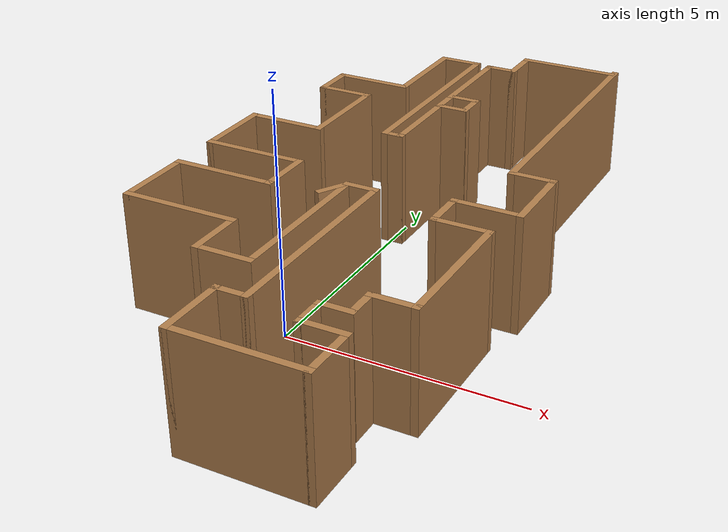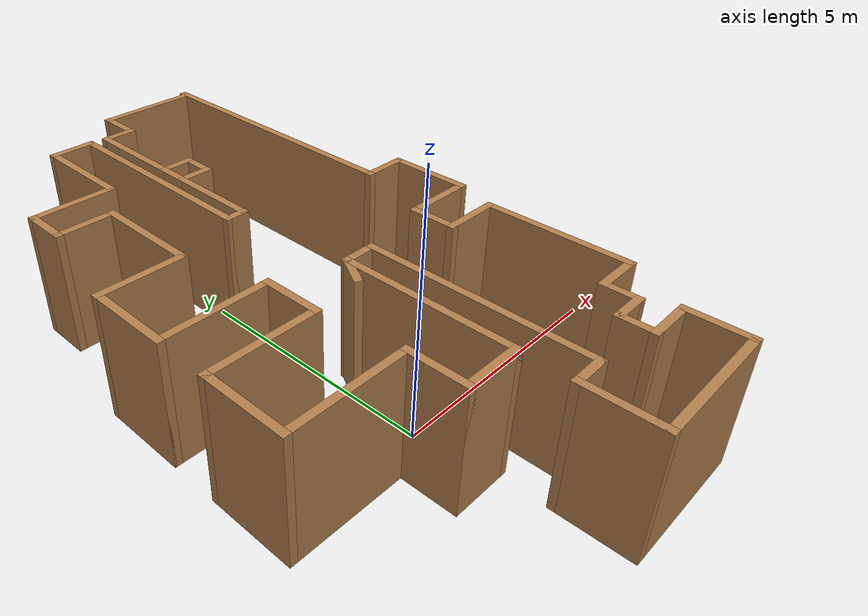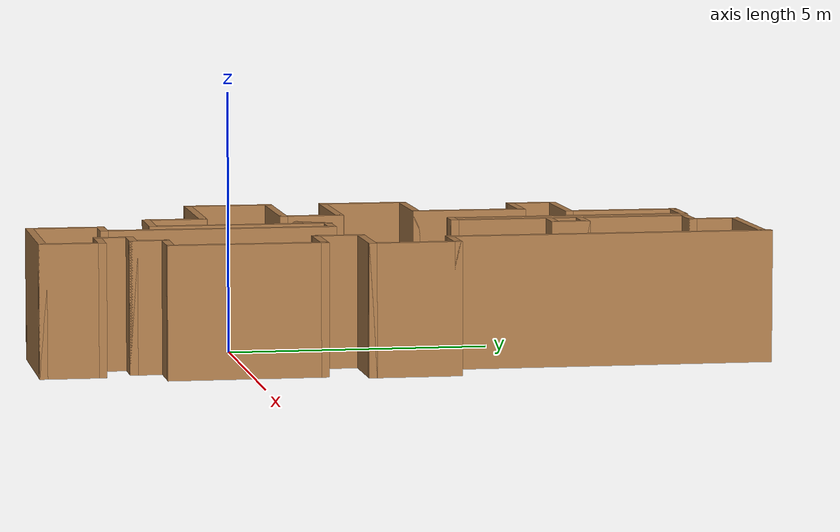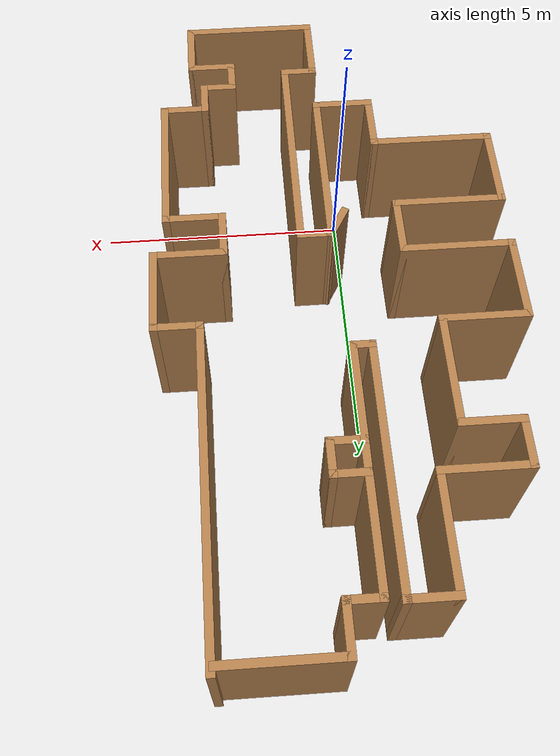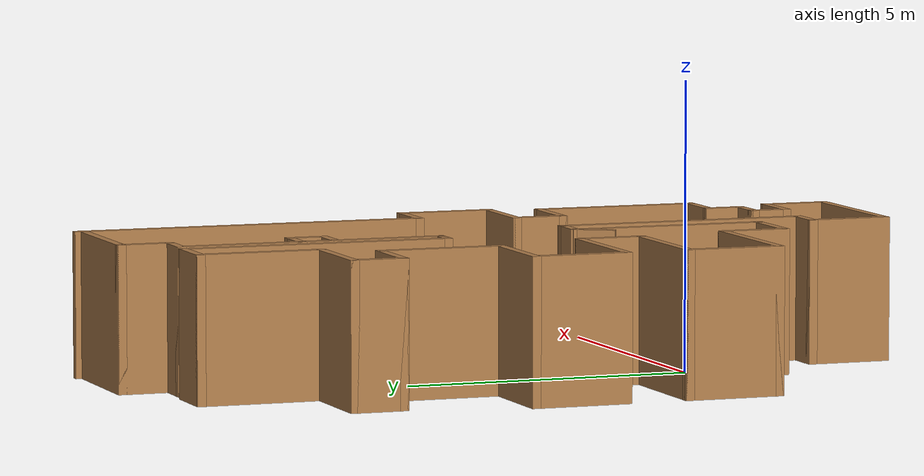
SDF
<?xml version='1.0'?>
<sdf version='1.6'>
  <model name='map_67'>
    <pose frame=''>0.347276 3.00658 0 0 -0 0</pose>
    <link name='Wall_10'>
      <collision name='Wall_10_Collision'>
        <geometry>
          <box>
            <size>2.25 0.15 2.5</size>
          </box>
        </geometry>
        <pose frame=''>0 0 1.25 0 -0 0</pose>
      </collision>
      <visual name='Wall_10_Visual'>
        <pose frame=''>0 0 1.25 0 -0 0</pose>
        <geometry>
          <box>
            <size>2.25 0.15 2.5</size>
          </box>
        </geometry>
        <material>
          <script>
            <uri>file://media/materials/scripts/gazebo.material</uri>
            <name>Gazebo/Wood</name>
          </script>
          <ambient>1 1 1 1</ambient>
        </material>
        <meta>
          <layer>0</layer>
        </meta>
      </visual>
      <pose frame=''>1.5 6.75 0 0 -0 3.14159</pose>
    </link>
    <link name='Wall_11'>
      <collision name='Wall_11_Collision'>
        <geometry>
          <box>
            <size>1 0.15 2.5</size>
          </box>
        </geometry>
        <pose frame=''>0 0 1.25 0 -0 0</pose>
      </collision>
      <visual name='Wall_11_Visual'>
        <pose frame=''>0 0 1.25 0 -0 0</pose>
        <geometry>
          <box>
            <size>1 0.15 2.5</size>
          </box>
        </geometry>
        <material>
          <script>
            <uri>file://media/materials/scripts/gazebo.material</uri>
            <name>Gazebo/Wood</name>
          </script>
          <ambient>1 1 1 1</ambient>
        </material>
        <meta>
          <layer>0</layer>
        </meta>
      </visual>
      <pose frame=''>0.45 6.325 0 0 -0 -1.5708</pose>
    </link>
    <link name='Wall_12'>
      <collision name='Wall_12_Collision'>
        <geometry>
          <box>
            <size>0.75 0.15 2.5</size>
          </box>
        </geometry>
        <pose frame=''>0 0 1.25 0 -0 0</pose>
      </collision>
      <visual name='Wall_12_Visual'>
        <pose frame=''>0 0 1.25 0 -0 0</pose>
        <geometry>
          <box>
            <size>0.75 0.15 2.5</size>
          </box>
        </geometry>
        <material>
          <script>
            <uri>file://media/materials/scripts/gazebo.material</uri>
            <name>Gazebo/Wood</name>
          </script>
          <ambient>1 1 1 1</ambient>
        </material>
        <meta>
          <layer>0</layer>
        </meta>
      </visual>
      <pose frame=''>0.15 5.9 0 0 -0 3.14159</pose>
    </link>
    <link name='Wall_13'>
      <collision name='Wall_13_Collision'>
        <geometry>
          <box>
            <size>2.25 0.15 2.5</size>
          </box>
        </geometry>
        <pose frame=''>0 0 1.25 0 -0 0</pose>
      </collision>
      <visual name='Wall_13_Visual'>
        <pose frame=''>0 0 1.25 0 -0 0</pose>
        <geometry>
          <box>
            <size>2.25 0.15 2.5</size>
          </box>
        </geometry>
        <material>
          <script>
            <uri>file://media/materials/scripts/gazebo.material</uri>
            <name>Gazebo/Wood</name>
          </script>
          <ambient>1 1 1 1</ambient>
        </material>
        <meta>
          <layer>0</layer>
        </meta>
      </visual>
      <pose frame=''>-0.15 4.85 0 0 -0 -1.5708</pose>
    </link>
    <link name='Wall_14'>
      <collision name='Wall_14_Collision'>
        <geometry>
          <box>
            <size>0.75 0.15 2.5</size>
          </box>
        </geometry>
        <pose frame=''>0 0 1.25 0 -0 0</pose>
      </collision>
      <visual name='Wall_14_Visual'>
        <pose frame=''>0 0 1.25 0 -0 0</pose>
        <geometry>
          <box>
            <size>0.75 0.15 2.5</size>
          </box>
        </geometry>
        <material>
          <script>
            <uri>file://media/materials/scripts/gazebo.material</uri>
            <name>Gazebo/Wood</name>
          </script>
          <ambient>1 1 1 1</ambient>
        </material>
        <meta>
          <layer>0</layer>
        </meta>
      </visual>
      <pose frame=''>0.15 3.8 0 0 -0 0</pose>
    </link>
    <link name='Wall_15'>
      <collision name='Wall_15_Collision'>
        <geometry>
          <box>
            <size>0.75 0.15 2.5</size>
          </box>
        </geometry>
        <pose frame=''>0 0 1.25 0 -0 0</pose>
      </collision>
      <visual name='Wall_15_Visual'>
        <pose frame=''>0 0 1.25 0 -0 0</pose>
        <geometry>
          <box>
            <size>0.75 0.15 2.5</size>
          </box>
        </geometry>
        <material>
          <script>
            <uri>file://media/materials/scripts/gazebo.material</uri>
            <name>Gazebo/Wood</name>
          </script>
          <ambient>1 1 1 1</ambient>
        </material>
        <meta>
          <layer>0</layer>
        </meta>
      </visual>
      <pose frame=''>0.45 3.5 0 0 -0 -1.5708</pose>
    </link>
    <link name='Wall_16'>
      <collision name='Wall_16_Collision'>
        <geometry>
          <box>
            <size>0.75 0.15 2.5</size>
          </box>
        </geometry>
        <pose frame=''>0 0 1.25 0 -0 0</pose>
      </collision>
      <visual name='Wall_16_Visual'>
        <pose frame=''>0 0 1.25 0 -0 0</pose>
        <geometry>
          <box>
            <size>0.75 0.15 2.5</size>
          </box>
        </geometry>
        <material>
          <script>
            <uri>file://media/materials/scripts/gazebo.material</uri>
            <name>Gazebo/Wood</name>
          </script>
          <ambient>1 1 1 1</ambient>
        </material>
        <meta>
          <layer>0</layer>
        </meta>
      </visual>
      <pose frame=''>0.15 3.2 0 0 -0 3.14159</pose>
    </link>
    <link name='Wall_17'>
      <collision name='Wall_17_Collision'>
        <geometry>
          <box>
            <size>2 0.15 2.5</size>
          </box>
        </geometry>
        <pose frame=''>0 0 1.25 0 -0 0</pose>
      </collision>
      <visual name='Wall_17_Visual'>
        <pose frame=''>0 0 1.25 0 -0 0</pose>
        <geometry>
          <box>
            <size>2 0.15 2.5</size>
          </box>
        </geometry>
        <material>
          <script>
            <uri>file://media/materials/scripts/gazebo.material</uri>
            <name>Gazebo/Wood</name>
          </script>
          <ambient>1 1 1 1</ambient>
        </material>
        <meta>
          <layer>0</layer>
        </meta>
      </visual>
      <pose frame=''>-0.15 2.275 0 0 -0 -1.5708</pose>
    </link>
    <link name='Wall_19'>
      <collision name='Wall_19_Collision'>
        <geometry>
          <box>
            <size>0.75 0.15 2.5</size>
          </box>
        </geometry>
        <pose frame=''>0 0 1.25 0 -0 0</pose>
      </collision>
      <visual name='Wall_19_Visual'>
        <pose frame=''>0 0 1.25 0 -0 0</pose>
        <geometry>
          <box>
            <size>0.75 0.15 2.5</size>
          </box>
        </geometry>
        <material>
          <script>
            <uri>file://media/materials/scripts/gazebo.material</uri>
            <name>Gazebo/Wood</name>
          </script>
          <ambient>1 1 1 1</ambient>
        </material>
        <meta>
          <layer>0</layer>
        </meta>
      </visual>
      <pose frame=''>-0.15 3.5 0 0 -0 -1.5708</pose>
    </link>
    <link name='Wall_21'>
      <collision name='Wall_21_Collision'>
        <geometry>
          <box>
            <size>0.5 0.15 2.5</size>
          </box>
        </geometry>
        <pose frame=''>0 0 1.25 0 -0 0</pose>
      </collision>
      <visual name='Wall_21_Visual'>
        <pose frame=''>0 0 1.25 0 -0 0</pose>
        <geometry>
          <box>
            <size>0.5 0.15 2.5</size>
          </box>
        </geometry>
        <material>
          <script>
            <uri>file://media/materials/scripts/gazebo.material</uri>
            <name>Gazebo/Wood</name>
          </script>
          <ambient>1 1 1 1</ambient>
        </material>
        <meta>
          <layer>0</layer>
        </meta>
      </visual>
      <pose frame=''>-0.325 1.35 0 0 -0 3.14159</pose>
    </link>
    <link name='Wall_22'>
      <collision name='Wall_22_Collision'>
        <geometry>
          <box>
            <size>4.75 0.15 2.5</size>
          </box>
        </geometry>
        <pose frame=''>0 0 1.25 0 -0 0</pose>
      </collision>
      <visual name='Wall_22_Visual'>
        <pose frame=''>0 0 1.25 0 -0 0</pose>
        <geometry>
          <box>
            <size>4.75 0.15 2.5</size>
          </box>
        </geometry>
        <material>
          <script>
            <uri>file://media/materials/scripts/gazebo.material</uri>
            <name>Gazebo/Wood</name>
          </script>
          <ambient>1 1 1 1</ambient>
        </material>
        <meta>
          <layer>0</layer>
        </meta>
      </visual>
      <pose frame=''>-0.5 3.65 0 0 -0 1.5708</pose>
    </link>
    <link name='Wall_23'>
      <collision name='Wall_23_Collision'>
        <geometry>
          <box>
            <size>1 0.15 2.5</size>
          </box>
        </geometry>
        <pose frame=''>0 0 1.25 0 -0 0</pose>
      </collision>
      <visual name='Wall_23_Visual'>
        <pose frame=''>0 0 1.25 0 -0 0</pose>
        <geometry>
          <box>
            <size>1 0.15 2.5</size>
          </box>
        </geometry>
        <material>
          <script>
            <uri>file://media/materials/scripts/gazebo.material</uri>
            <name>Gazebo/Wood</name>
          </script>
          <ambient>1 1 1 1</ambient>
        </material>
        <meta>
          <layer>0</layer>
        </meta>
      </visual>
      <pose frame=''>-0.925 5.95 0 0 -0 3.14159</pose>
    </link>
    <link name='Wall_24'>
      <collision name='Wall_24_Collision'>
        <geometry>
          <box>
            <size>2.25 0.15 2.5</size>
          </box>
        </geometry>
        <pose frame=''>0 0 1.25 0 -0 0</pose>
      </collision>
      <visual name='Wall_24_Visual'>
        <pose frame=''>0 0 1.25 0 -0 0</pose>
        <geometry>
          <box>
            <size>2.25 0.15 2.5</size>
          </box>
        </geometry>
        <material>
          <script>
            <uri>file://media/materials/scripts/gazebo.material</uri>
            <name>Gazebo/Wood</name>
          </script>
          <ambient>1 1 1 1</ambient>
        </material>
        <meta>
          <layer>0</layer>
        </meta>
      </visual>
      <pose frame=''>-1.35 4.9 0 0 -0 -1.5708</pose>
    </link>
    <link name='Wall_25'>
      <collision name='Wall_25_Collision'>
        <geometry>
          <box>
            <size>1.75 0.15 2.5</size>
          </box>
        </geometry>
        <pose frame=''>0 0 1.25 0 -0 0</pose>
      </collision>
      <visual name='Wall_25_Visual'>
        <pose frame=''>0 0 1.25 0 -0 0</pose>
        <geometry>
          <box>
            <size>1.75 0.15 2.5</size>
          </box>
        </geometry>
        <material>
          <script>
            <uri>file://media/materials/scripts/gazebo.material</uri>
            <name>Gazebo/Wood</name>
          </script>
          <ambient>1 1 1 1</ambient>
        </material>
        <meta>
          <layer>0</layer>
        </meta>
      </visual>
      <pose frame=''>-2.15 3.85 0 0 -0 3.14159</pose>
    </link>
    <link name='Wall_26'>
      <collision name='Wall_26_Collision'>
        <geometry>
          <box>
            <size>1 0.15 2.5</size>
          </box>
        </geometry>
        <pose frame=''>0 0 1.25 0 -0 0</pose>
      </collision>
      <visual name='Wall_26_Visual'>
        <pose frame=''>0 0 1.25 0 -0 0</pose>
        <geometry>
          <box>
            <size>1 0.15 2.5</size>
          </box>
        </geometry>
        <material>
          <script>
            <uri>file://media/materials/scripts/gazebo.material</uri>
            <name>Gazebo/Wood</name>
          </script>
          <ambient>1 1 1 1</ambient>
        </material>
        <meta>
          <layer>0</layer>
        </meta>
      </visual>
      <pose frame=''>-2.95 3.425 0 0 -0 -1.5708</pose>
    </link>
    <link name='Wall_27'>
      <collision name='Wall_27_Collision'>
        <geometry>
          <box>
            <size>1.25 0.15 2.5</size>
          </box>
        </geometry>
        <pose frame=''>0 0 1.25 0 -0 0</pose>
      </collision>
      <visual name='Wall_27_Visual'>
        <pose frame=''>0 0 1.25 0 -0 0</pose>
        <geometry>
          <box>
            <size>1.25 0.15 2.5</size>
          </box>
        </geometry>
        <material>
          <script>
            <uri>file://media/materials/scripts/gazebo.material</uri>
            <name>Gazebo/Wood</name>
          </script>
          <ambient>1 1 1 1</ambient>
        </material>
        <meta>
          <layer>0</layer>
        </meta>
      </visual>
      <pose frame=''>-2.4 3 0 0 -0 0</pose>
    </link>
    <link name='Wall_28'>
      <collision name='Wall_28_Collision'>
        <geometry>
          <box>
            <size>2.25 0.15 2.5</size>
          </box>
        </geometry>
        <pose frame=''>0 0 1.25 0 -0 0</pose>
      </collision>
      <visual name='Wall_28_Visual'>
        <pose frame=''>0 0 1.25 0 -0 0</pose>
        <geometry>
          <box>
            <size>2.25 0.15 2.5</size>
          </box>
        </geometry>
        <material>
          <script>
            <uri>file://media/materials/scripts/gazebo.material</uri>
            <name>Gazebo/Wood</name>
          </script>
          <ambient>1 1 1 1</ambient>
        </material>
        <meta>
          <layer>0</layer>
        </meta>
      </visual>
      <pose frame=''>-1.85 1.95 0 0 -0 -1.5708</pose>
    </link>
    <link name='Wall_29'>
      <collision name='Wall_29_Collision'>
        <geometry>
          <box>
            <size>1.75 0.15 2.5</size>
          </box>
        </geometry>
        <pose frame=''>0 0 1.25 0 -0 0</pose>
      </collision>
      <visual name='Wall_29_Visual'>
        <pose frame=''>0 0 1.25 0 -0 0</pose>
        <geometry>
          <box>
            <size>1.75 0.15 2.5</size>
          </box>
        </geometry>
        <material>
          <script>
            <uri>file://media/materials/scripts/gazebo.material</uri>
            <name>Gazebo/Wood</name>
          </script>
          <ambient>1 1 1 1</ambient>
        </material>
        <meta>
          <layer>0</layer>
        </meta>
      </visual>
      <pose frame=''>-2.65 0.9 0 0 -0 3.14159</pose>
    </link>
    <link name='Wall_30'>
      <collision name='Wall_30_Collision'>
        <geometry>
          <box>
            <size>1.75 0.15 2.5</size>
          </box>
        </geometry>
        <pose frame=''>0 0 1.25 0 -0 0</pose>
      </collision>
      <visual name='Wall_30_Visual'>
        <pose frame=''>0 0 1.25 0 -0 0</pose>
        <geometry>
          <box>
            <size>1.75 0.15 2.5</size>
          </box>
        </geometry>
        <material>
          <script>
            <uri>file://media/materials/scripts/gazebo.material</uri>
            <name>Gazebo/Wood</name>
          </script>
          <ambient>1 1 1 1</ambient>
        </material>
        <meta>
          <layer>0</layer>
        </meta>
      </visual>
      <pose frame=''>-3.45 0.1 0 0 -0 -1.5708</pose>
    </link>
    <link name='Wall_31'>
      <collision name='Wall_31_Collision'>
        <geometry>
          <box>
            <size>2.25 0.15 2.5</size>
          </box>
        </geometry>
        <pose frame=''>0 0 1.25 0 -0 0</pose>
      </collision>
      <visual name='Wall_31_Visual'>
        <pose frame=''>0 0 1.25 0 -0 0</pose>
        <geometry>
          <box>
            <size>2.25 0.15 2.5</size>
          </box>
        </geometry>
        <material>
          <script>
            <uri>file://media/materials/scripts/gazebo.material</uri>
            <name>Gazebo/Wood</name>
          </script>
          <ambient>1 1 1 1</ambient>
        </material>
        <meta>
          <layer>0</layer>
        </meta>
      </visual>
      <pose frame=''>-2.4 -0.7 0 0 -0 0</pose>
    </link>
    <link name='Wall_32'>
      <collision name='Wall_32_Collision'>
        <geometry>
          <box>
            <size>1.25 0.15 2.5</size>
          </box>
        </geometry>
        <pose frame=''>0 0 1.25 0 -0 0</pose>
      </collision>
      <visual name='Wall_32_Visual'>
        <pose frame=''>0 0 1.25 0 -0 0</pose>
        <geometry>
          <box>
            <size>1.25 0.15 2.5</size>
          </box>
        </geometry>
        <material>
          <script>
            <uri>file://media/materials/scripts/gazebo.material</uri>
            <name>Gazebo/Wood</name>
          </script>
          <ambient>1 1 1 1</ambient>
        </material>
        <meta>
          <layer>0</layer>
        </meta>
      </visual>
      <pose frame=''>-1.35 -1.25 0 0 -0 -1.5708</pose>
    </link>
    <link name='Wall_34'>
      <collision name='Wall_34_Collision'>
        <geometry>
          <box>
            <size>2.25 0.15 2.5</size>
          </box>
        </geometry>
        <pose frame=''>0 0 1.25 0 -0 0</pose>
      </collision>
      <visual name='Wall_34_Visual'>
        <pose frame=''>0 0 1.25 0 -0 0</pose>
        <geometry>
          <box>
            <size>2.25 0.15 2.5</size>
          </box>
        </geometry>
        <material>
          <script>
            <uri>file://media/materials/scripts/gazebo.material</uri>
            <name>Gazebo/Wood</name>
          </script>
          <ambient>1 1 1 1</ambient>
        </material>
        <meta>
          <layer>0</layer>
        </meta>
      </visual>
      <pose frame=''>-2.4 -1.8 0 0 -0 3.14159</pose>
    </link>
    <link name='Wall_35'>
      <collision name='Wall_35_Collision'>
        <geometry>
          <box>
            <size>1.75 0.15 2.5</size>
          </box>
        </geometry>
        <pose frame=''>0 0 1.25 0 -0 0</pose>
      </collision>
      <visual name='Wall_35_Visual'>
        <pose frame=''>0 0 1.25 0 -0 0</pose>
        <geometry>
          <box>
            <size>1.75 0.15 2.5</size>
          </box>
        </geometry>
        <material>
          <script>
            <uri>file://media/materials/scripts/gazebo.material</uri>
            <name>Gazebo/Wood</name>
          </script>
          <ambient>1 1 1 1</ambient>
        </material>
        <meta>
          <layer>0</layer>
        </meta>
      </visual>
      <pose frame=''>-3.45 -2.6 0 0 -0 -1.5708</pose>
    </link>
    <link name='Wall_36'>
      <collision name='Wall_36_Collision'>
        <geometry>
          <box>
            <size>2.5 0.15 2.5</size>
          </box>
        </geometry>
        <pose frame=''>0 0 1.25 0 -0 0</pose>
      </collision>
      <visual name='Wall_36_Visual'>
        <pose frame=''>0 0 1.25 0 -0 0</pose>
        <geometry>
          <box>
            <size>2.5 0.15 2.5</size>
          </box>
        </geometry>
        <material>
          <script>
            <uri>file://media/materials/scripts/gazebo.material</uri>
            <name>Gazebo/Wood</name>
          </script>
          <ambient>1 1 1 1</ambient>
        </material>
        <meta>
          <layer>0</layer>
        </meta>
      </visual>
      <pose frame=''>-2.275 -3.4 0 0 -0 0</pose>
    </link>
    <link name='Wall_37'>
      <collision name='Wall_37_Collision'>
        <geometry>
          <box>
            <size>1.25 0.15 2.5</size>
          </box>
        </geometry>
        <pose frame=''>0 0 1.25 0 -0 0</pose>
      </collision>
      <visual name='Wall_37_Visual'>
        <pose frame=''>0 0 1.25 0 -0 0</pose>
        <geometry>
          <box>
            <size>1.25 0.15 2.5</size>
          </box>
        </geometry>
        <material>
          <script>
            <uri>file://media/materials/scripts/gazebo.material</uri>
            <name>Gazebo/Wood</name>
          </script>
          <ambient>1 1 1 1</ambient>
        </material>
        <meta>
          <layer>0</layer>
        </meta>
      </visual>
      <pose frame=''>-1.1 -3.95 0 0 -0 -1.5708</pose>
    </link>
    <link name='Wall_38'>
      <collision name='Wall_38_Collision'>
        <geometry>
          <box>
            <size>1.25 0.15 2.5</size>
          </box>
        </geometry>
        <pose frame=''>0 0 1.25 0 -0 0</pose>
      </collision>
      <visual name='Wall_38_Visual'>
        <pose frame=''>0 0 1.25 0 -0 0</pose>
        <geometry>
          <box>
            <size>1.25 0.15 2.5</size>
          </box>
        </geometry>
        <material>
          <script>
            <uri>file://media/materials/scripts/gazebo.material</uri>
            <name>Gazebo/Wood</name>
          </script>
          <ambient>1 1 1 1</ambient>
        </material>
        <meta>
          <layer>0</layer>
        </meta>
      </visual>
      <pose frame=''>-0.55 -4.5 0 0 -0 0</pose>
    </link>
    <link name='Wall_39'>
      <collision name='Wall_39_Collision'>
        <geometry>
          <box>
            <size>3.5 0.15 2.5</size>
          </box>
        </geometry>
        <pose frame=''>0 0 1.25 0 -0 0</pose>
      </collision>
      <visual name='Wall_39_Visual'>
        <pose frame=''>0 0 1.25 0 -0 0</pose>
        <geometry>
          <box>
            <size>3.5 0.15 2.5</size>
          </box>
        </geometry>
        <material>
          <script>
            <uri>file://media/materials/scripts/gazebo.material</uri>
            <name>Gazebo/Wood</name>
          </script>
          <ambient>1 1 1 1</ambient>
        </material>
        <meta>
          <layer>0</layer>
        </meta>
      </visual>
      <pose frame=''>0 -2.825 0 0 -0 1.5708</pose>
    </link>
    <link name='Wall_40'>
      <collision name='Wall_40_Collision'>
        <geometry>
          <box>
            <size>0.75 0.15 2.5</size>
          </box>
        </geometry>
        <pose frame=''>0 0 1.25 0 -0 0</pose>
      </collision>
      <visual name='Wall_40_Visual'>
        <pose frame=''>0 0 1.25 0 -0 0</pose>
        <geometry>
          <box>
            <size>0.75 0.15 2.5</size>
          </box>
        </geometry>
        <material>
          <script>
            <uri>file://media/materials/scripts/gazebo.material</uri>
            <name>Gazebo/Wood</name>
          </script>
          <ambient>1 1 1 1</ambient>
        </material>
        <meta>
          <layer>0</layer>
        </meta>
      </visual>
      <pose frame=''>0.3 -1.15 0 0 -0 0</pose>
    </link>
    <link name='Wall_41'>
      <collision name='Wall_41_Collision'>
        <geometry>
          <box>
            <size>4.5 0.15 2.5</size>
          </box>
        </geometry>
        <pose frame=''>0 0 1.25 0 -0 0</pose>
      </collision>
      <visual name='Wall_41_Visual'>
        <pose frame=''>0 0 1.25 0 -0 0</pose>
        <geometry>
          <box>
            <size>4.5 0.15 2.5</size>
          </box>
        </geometry>
        <material>
          <script>
            <uri>file://media/materials/scripts/gazebo.material</uri>
            <name>Gazebo/Wood</name>
          </script>
          <ambient>1 1 1 1</ambient>
        </material>
        <meta>
          <layer>0</layer>
        </meta>
      </visual>
      <pose frame=''>0.6 -3.325 0 0 -0 -1.5708</pose>
    </link>
    <link name='Wall_42'>
      <collision name='Wall_42_Collision'>
        <geometry>
          <box>
            <size>0.75 0.15 2.5</size>
          </box>
        </geometry>
        <pose frame=''>0 0 1.25 0 -0 0</pose>
      </collision>
      <visual name='Wall_42_Visual'>
        <pose frame=''>0 0 1.25 0 -0 0</pose>
        <geometry>
          <box>
            <size>0.75 0.15 2.5</size>
          </box>
        </geometry>
        <material>
          <script>
            <uri>file://media/materials/scripts/gazebo.material</uri>
            <name>Gazebo/Wood</name>
          </script>
          <ambient>1 1 1 1</ambient>
        </material>
        <meta>
          <layer>0</layer>
        </meta>
      </visual>
      <pose frame=''>0.3 -5.5 0 0 -0 3.14159</pose>
    </link>
    <link name='Wall_43'>
      <collision name='Wall_43_Collision'>
        <geometry>
          <box>
            <size>1.5 0.15 2.5</size>
          </box>
        </geometry>
        <pose frame=''>0 0 1.25 0 -0 0</pose>
      </collision>
      <visual name='Wall_43_Visual'>
        <pose frame=''>0 0 1.25 0 -0 0</pose>
        <geometry>
          <box>
            <size>1.5 0.15 2.5</size>
          </box>
        </geometry>
        <material>
          <script>
            <uri>file://media/materials/scripts/gazebo.material</uri>
            <name>Gazebo/Wood</name>
          </script>
          <ambient>1 1 1 1</ambient>
        </material>
        <meta>
          <layer>0</layer>
        </meta>
      </visual>
      <pose frame=''>0 -6.175 0 0 -0 -1.5708</pose>
    </link>
    <link name='Wall_44'>
      <collision name='Wall_44_Collision'>
        <geometry>
          <box>
            <size>2.75 0.15 2.5</size>
          </box>
        </geometry>
        <pose frame=''>0 0 1.25 0 -0 0</pose>
      </collision>
      <visual name='Wall_44_Visual'>
        <pose frame=''>0 0 1.25 0 -0 0</pose>
        <geometry>
          <box>
            <size>2.75 0.15 2.5</size>
          </box>
        </geometry>
        <material>
          <script>
            <uri>file://media/materials/scripts/gazebo.material</uri>
            <name>Gazebo/Wood</name>
          </script>
          <ambient>1 1 1 1</ambient>
        </material>
        <meta>
          <layer>0</layer>
        </meta>
      </visual>
      <pose frame=''>1.3 -6.85 0 0 -0 0</pose>
    </link>
    <link name='Wall_45'>
      <collision name='Wall_45_Collision'>
        <geometry>
          <box>
            <size>1.25 0.15 2.5</size>
          </box>
        </geometry>
        <pose frame=''>0 0 1.25 0 -0 0</pose>
      </collision>
      <visual name='Wall_45_Visual'>
        <pose frame=''>0 0 1.25 0 -0 0</pose>
        <geometry>
          <box>
            <size>1.25 0.15 2.5</size>
          </box>
        </geometry>
        <material>
          <script>
            <uri>file://media/materials/scripts/gazebo.material</uri>
            <name>Gazebo/Wood</name>
          </script>
          <ambient>1 1 1 1</ambient>
        </material>
        <meta>
          <layer>0</layer>
        </meta>
      </visual>
      <pose frame=''>2.6 -6.3 0 0 -0 1.5708</pose>
    </link>
    <link name='Wall_46'>
      <collision name='Wall_46_Collision'>
        <geometry>
          <box>
            <size>1 0.15 2.5</size>
          </box>
        </geometry>
        <pose frame=''>0 0 1.25 0 -0 0</pose>
      </collision>
      <visual name='Wall_46_Visual'>
        <pose frame=''>0 0 1.25 0 -0 0</pose>
        <geometry>
          <box>
            <size>1 0.15 2.5</size>
          </box>
        </geometry>
        <material>
          <script>
            <uri>file://media/materials/scripts/gazebo.material</uri>
            <name>Gazebo/Wood</name>
          </script>
          <ambient>1 1 1 1</ambient>
        </material>
        <meta>
          <layer>0</layer>
        </meta>
      </visual>
      <pose frame=''>2.175 -5.75 0 0 -0 3.14159</pose>
    </link>
    <link name='Wall_47'>
      <collision name='Wall_47_Collision'>
        <geometry>
          <box>
            <size>0.75 0.15 2.5</size>
          </box>
        </geometry>
        <pose frame=''>0 0 1.25 0 -0 0</pose>
      </collision>
      <visual name='Wall_47_Visual'>
        <pose frame=''>0 0 1.25 0 -0 0</pose>
        <geometry>
          <box>
            <size>0.75 0.15 2.5</size>
          </box>
        </geometry>
        <material>
          <script>
            <uri>file://media/materials/scripts/gazebo.material</uri>
            <name>Gazebo/Wood</name>
          </script>
          <ambient>1 1 1 1</ambient>
        </material>
        <meta>
          <layer>0</layer>
        </meta>
      </visual>
      <pose frame=''>1.75 -5.45 0 0 -0 1.5708</pose>
    </link>
    <link name='Wall_48'>
      <collision name='Wall_48_Collision'>
        <geometry>
          <box>
            <size>0.75 0.15 2.5</size>
          </box>
        </geometry>
        <pose frame=''>0 0 1.25 0 -0 0</pose>
      </collision>
      <visual name='Wall_48_Visual'>
        <pose frame=''>0 0 1.25 0 -0 0</pose>
        <geometry>
          <box>
            <size>0.75 0.15 2.5</size>
          </box>
        </geometry>
        <material>
          <script>
            <uri>file://media/materials/scripts/gazebo.material</uri>
            <name>Gazebo/Wood</name>
          </script>
          <ambient>1 1 1 1</ambient>
        </material>
        <meta>
          <layer>0</layer>
        </meta>
      </visual>
      <pose frame=''>2.05 -5.15 0 0 -0 0</pose>
    </link>
    <link name='Wall_49'>
      <collision name='Wall_49_Collision'>
        <geometry>
          <box>
            <size>0.75 0.15 2.5</size>
          </box>
        </geometry>
        <pose frame=''>0 0 1.25 0 -0 0</pose>
      </collision>
      <visual name='Wall_49_Visual'>
        <pose frame=''>0 0 1.25 0 -0 0</pose>
        <geometry>
          <box>
            <size>0.75 0.15 2.5</size>
          </box>
        </geometry>
        <material>
          <script>
            <uri>file://media/materials/scripts/gazebo.material</uri>
            <name>Gazebo/Wood</name>
          </script>
          <ambient>1 1 1 1</ambient>
        </material>
        <meta>
          <layer>0</layer>
        </meta>
      </visual>
      <pose frame=''>2.35 -4.85 0 0 -0 1.5708</pose>
    </link>
    <link name='Wall_52'>
      <collision name='Wall_52_Collision'>
        <geometry>
          <box>
            <size>1 0.15 2.5</size>
          </box>
        </geometry>
        <pose frame=''>0 0 1.25 0 -0 0</pose>
      </collision>
      <visual name='Wall_52_Visual'>
        <pose frame=''>0 0 1.25 0 -0 0</pose>
        <geometry>
          <box>
            <size>1 0.15 2.5</size>
          </box>
        </geometry>
        <material>
          <script>
            <uri>file://media/materials/scripts/gazebo.material</uri>
            <name>Gazebo/Wood</name>
          </script>
          <ambient>1 1 1 1</ambient>
        </material>
        <meta>
          <layer>0</layer>
        </meta>
      </visual>
      <pose frame=''>2.775 -4.55 0 0 -0 0</pose>
    </link>
    <link name='Wall_53'>
      <collision name='Wall_53_Collision'>
        <geometry>
          <box>
            <size>3 0.15 2.5</size>
          </box>
        </geometry>
        <pose frame=''>0 0 1.25 0 -0 0</pose>
      </collision>
      <visual name='Wall_53_Visual'>
        <pose frame=''>0 0 1.25 0 -0 0</pose>
        <geometry>
          <box>
            <size>3 0.15 2.5</size>
          </box>
        </geometry>
        <material>
          <script>
            <uri>file://media/materials/scripts/gazebo.material</uri>
            <name>Gazebo/Wood</name>
          </script>
          <ambient>1 1 1 1</ambient>
        </material>
        <meta>
          <layer>0</layer>
        </meta>
      </visual>
      <pose frame=''>3.2 -3.125 0 0 -0 1.5708</pose>
    </link>
    <link name='Wall_54'>
      <collision name='Wall_54_Collision'>
        <geometry>
          <box>
            <size>1.25 0.15 2.5</size>
          </box>
        </geometry>
        <pose frame=''>0 0 1.25 0 -0 0</pose>
      </collision>
      <visual name='Wall_54_Visual'>
        <pose frame=''>0 0 1.25 0 -0 0</pose>
        <geometry>
          <box>
            <size>1.25 0.15 2.5</size>
          </box>
        </geometry>
        <material>
          <script>
            <uri>file://media/materials/scripts/gazebo.material</uri>
            <name>Gazebo/Wood</name>
          </script>
          <ambient>1 1 1 1</ambient>
        </material>
        <meta>
          <layer>0</layer>
        </meta>
      </visual>
      <pose frame=''>2.65 -1.7 0 0 -0 3.14159</pose>
    </link>
    <link name='Wall_55'>
      <collision name='Wall_55_Collision'>
        <geometry>
          <box>
            <size>1 0.15 2.5</size>
          </box>
        </geometry>
        <pose frame=''>0 0 1.25 0 -0 0</pose>
      </collision>
      <visual name='Wall_55_Visual'>
        <pose frame=''>0 0 1.25 0 -0 0</pose>
        <geometry>
          <box>
            <size>1 0.15 2.5</size>
          </box>
        </geometry>
        <material>
          <script>
            <uri>file://media/materials/scripts/gazebo.material</uri>
            <name>Gazebo/Wood</name>
          </script>
          <ambient>1 1 1 1</ambient>
        </material>
        <meta>
          <layer>0</layer>
        </meta>
      </visual>
      <pose frame=''>2.1 -1.275 0 0 -0 1.5708</pose>
    </link>
    <link name='Wall_56'>
      <collision name='Wall_56_Collision'>
        <geometry>
          <box>
            <size>1.5 0.15 2.5</size>
          </box>
        </geometry>
        <pose frame=''>0 0 1.25 0 -0 0</pose>
      </collision>
      <visual name='Wall_56_Visual'>
        <pose frame=''>0 0 1.25 0 -0 0</pose>
        <geometry>
          <box>
            <size>1.5 0.15 2.5</size>
          </box>
        </geometry>
        <material>
          <script>
            <uri>file://media/materials/scripts/gazebo.material</uri>
            <name>Gazebo/Wood</name>
          </script>
          <ambient>1 1 1 1</ambient>
        </material>
        <meta>
          <layer>0</layer>
        </meta>
      </visual>
      <pose frame=''>2.775 -0.85 0 0 -0 0</pose>
    </link>
    <link name='Wall_57'>
      <collision name='Wall_57_Collision'>
        <geometry>
          <box>
            <size>1.75 0.15 2.5</size>
          </box>
        </geometry>
        <pose frame=''>0 0 1.25 0 -0 0</pose>
      </collision>
      <visual name='Wall_57_Visual'>
        <pose frame=''>0 0 1.25 0 -0 0</pose>
        <geometry>
          <box>
            <size>1.75 0.15 2.5</size>
          </box>
        </geometry>
        <material>
          <script>
            <uri>file://media/materials/scripts/gazebo.material</uri>
            <name>Gazebo/Wood</name>
          </script>
          <ambient>1 1 1 1</ambient>
        </material>
        <meta>
          <layer>0</layer>
        </meta>
      </visual>
      <pose frame=''>3.45 -0.05 0 0 -0 1.5708</pose>
    </link>
    <link name='Wall_58'>
      <collision name='Wall_58_Collision'>
        <geometry>
          <box>
            <size>1 0.15 2.5</size>
          </box>
        </geometry>
        <pose frame=''>0 0 1.25 0 -0 0</pose>
      </collision>
      <visual name='Wall_58_Visual'>
        <pose frame=''>0 0 1.25 0 -0 0</pose>
        <geometry>
          <box>
            <size>1 0.15 2.5</size>
          </box>
        </geometry>
        <material>
          <script>
            <uri>file://media/materials/scripts/gazebo.material</uri>
            <name>Gazebo/Wood</name>
          </script>
          <ambient>1 1 1 1</ambient>
        </material>
        <meta>
          <layer>0</layer>
        </meta>
      </visual>
      <pose frame=''>3.025 0.75 0 0 -0 3.14159</pose>
    </link>
    <link name='Wall_59'>
      <collision name='Wall_59_Collision'>
        <geometry>
          <box>
            <size>6.25 0.15 2.5</size>
          </box>
        </geometry>
        <pose frame=''>0 0 1.25 0 -0 0</pose>
      </collision>
      <visual name='Wall_59_Visual'>
        <pose frame=''>0 0 1.25 0 -0 0</pose>
        <geometry>
          <box>
            <size>6.25 0.15 2.5</size>
          </box>
        </geometry>
        <material>
          <script>
            <uri>file://media/materials/scripts/gazebo.material</uri>
            <name>Gazebo/Wood</name>
          </script>
          <ambient>1 1 1 1</ambient>
        </material>
        <meta>
          <layer>0</layer>
        </meta>
      </visual>
      <pose frame=''>2.6 3.8 0 0 -0 1.5708</pose>
    </link>
    <link name='Wall_61'>
      <collision name='Wall_61_Collision'>
        <geometry>
          <box>
            <size>0.75 0.15 2.5</size>
          </box>
        </geometry>
        <pose frame=''>0 0 1.25 0 -0 0</pose>
      </collision>
      <visual name='Wall_61_Visual'>
        <pose frame=''>0 0 1.25 0 -0 0</pose>
        <geometry>
          <box>
            <size>0.75 0.15 2.5</size>
          </box>
        </geometry>
        <material>
          <script>
            <uri>file://media/materials/scripts/gazebo.material</uri>
            <name>Gazebo/Wood</name>
          </script>
          <ambient>1 1 1 1</ambient>
        </material>
        <meta>
          <layer>0</layer>
        </meta>
      </visual>
      <pose frame=''>-0.15 -1.40981 0 0 -0 -2.0944</pose>
    </link>
    <static>1</static>
  </model>
</sdf>
